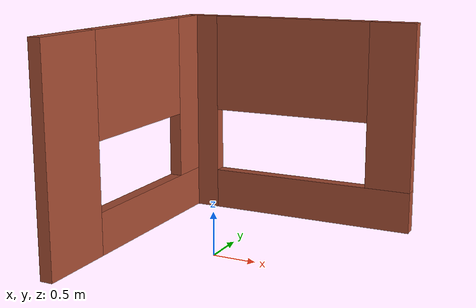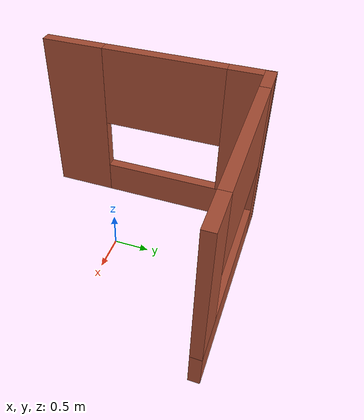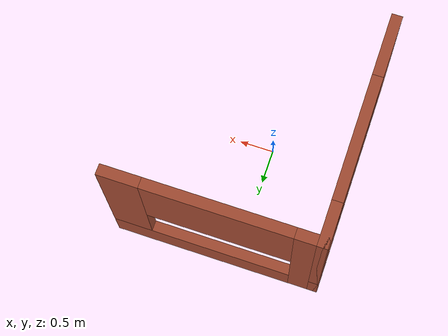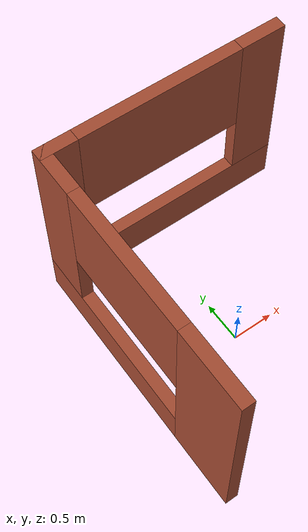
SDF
<?xml version="1.0" ?>

<sdf version="1.5">
<model name='building'>
      <pose frame=''>0.25 0.18 0 0 -0 0</pose>
      <link name='Wall_1'>
        <pose frame=''>-1.42 -0 0 0 -0 1.5708</pose>
        <visual name='Wall_1_Visual_0'>
          <pose frame=''>-1.1775 0 1.25 0 -0 0</pose>
          <geometry>
            <box>
              <size>0.895 0.15 2.5</size>
            </box>
          </geometry>
          <material>
            <script>
              <uri>file://media/materials/scripts/gazebo.material</uri>
              <name>Gazebo/Bricks</name>
            </script>
            <ambient>1 1 1 1</ambient>
          </material>
          <meta>
            <layer>0</layer>
          </meta>
        </visual>
        <collision name='Wall_1_Collision_0'>
          <geometry>
            <box>
              <size>0.895 0.15 2.5</size>
            </box>
          </geometry>
          <pose frame=''>-1.1775 0 1.25 0 -0 0</pose>
          <max_contacts>10</max_contacts>
          <surface>
            <contact>
              <ode/>
            </contact>
            <bounce/>
            <friction>
              <torsional>
                <ode/>
              </torsional>
              <ode/>
            </friction>
          </surface>
        </collision>
        <visual name='Wall_1_Visual_1'>
          <pose frame=''>0.4475 0 0.25 0 -0 0</pose>
          <geometry>
            <box>
              <size>2.355 0.15 0.5</size>
            </box>
          </geometry>
          <material>
            <script>
              <uri>file://media/materials/scripts/gazebo.material</uri>
              <name>Gazebo/Bricks</name>
            </script>
            <ambient>1 1 1 1</ambient>
          </material>
          <meta>
            <layer>0</layer>
          </meta>
        </visual>
        <collision name='Wall_1_Collision_1'>
          <geometry>
            <box>
              <size>2.355 0.15 0.5</size>
            </box>
          </geometry>
          <pose frame=''>0.4475 0 0.25 0 -0 0</pose>
          <max_contacts>10</max_contacts>
          <surface>
            <contact>
              <ode/>
            </contact>
            <bounce/>
            <friction>
              <torsional>
                <ode/>
              </torsional>
              <ode/>
            </friction>
          </surface>
        </collision>
        <visual name='Wall_1_Visual_2'>
          <pose frame=''>1.3175 0 1.5 0 -0 0</pose>
          <geometry>
            <box>
              <size>0.615 0.15 2</size>
            </box>
          </geometry>
          <material>
            <script>
              <uri>file://media/materials/scripts/gazebo.material</uri>
              <name>Gazebo/Bricks</name>
            </script>
            <ambient>1 1 1 1</ambient>
          </material>
          <meta>
            <layer>0</layer>
          </meta>
        </visual>
        <collision name='Wall_1_Collision_2'>
          <geometry>
            <box>
              <size>0.615 0.15 2</size>
            </box>
          </geometry>
          <pose frame=''>1.3175 0 1.5 0 -0 0</pose>
          <max_contacts>10</max_contacts>
          <surface>
            <contact>
              <ode/>
            </contact>
            <bounce/>
            <friction>
              <torsional>
                <ode/>
              </torsional>
              <ode/>
            </friction>
          </surface>
        </collision>
        <visual name='Wall_1_Visual_3'>
          <pose frame=''>0.14 0 1.9 0 -0 0</pose>
          <geometry>
            <box>
              <size>1.74 0.15 1.2</size>
            </box>
          </geometry>
          <material>
            <script>
              <uri>file://media/materials/scripts/gazebo.material</uri>
              <name>Gazebo/Bricks</name>
            </script>
            <ambient>1 1 1 1</ambient>
          </material>
          <meta>
            <layer>0</layer>
          </meta>
        </visual>
        <collision name='Wall_1_Collision_3'>
          <geometry>
            <box>
              <size>1.74 0.15 1.2</size>
            </box>
          </geometry>
          <pose frame=''>0.14 0 1.9 0 -0 0</pose>
          <max_contacts>10</max_contacts>
          <surface>
            <contact>
              <ode/>
            </contact>
            <bounce/>
            <friction>
              <torsional>
                <ode/>
              </torsional>
              <ode/>
            </friction>
          </surface>
        </collision>
        <self_collide>0</self_collide>
        <kinematic>0</kinematic>
      </link>
      <link name='Wall_3'>
        <pose frame=''>0.005 1.55 0 0 -0 0</pose>
        <visual name='Wall_3_Visual_0'>
          <pose frame=''>-1.27727 0 1.25 0 -0 0</pose>
          <geometry>
            <box>
              <size>0.425456 0.15 2.5</size>
            </box>
          </geometry>
          <material>
            <script>
              <uri>file://media/materials/scripts/gazebo.material</uri>
              <name>Gazebo/Bricks</name>
            </script>
            <ambient>1 1 1 1</ambient>
          </material>
          <meta>
            <layer>0</layer>
          </meta>
        </visual>
        <collision name='Wall_3_Collision_0'>
          <geometry>
            <box>
              <size>0.425456 0.15 2.5</size>
            </box>
          </geometry>
          <pose frame=''>-1.27727 0 1.25 0 -0 0</pose>
          <max_contacts>10</max_contacts>
          <surface>
            <contact>
              <ode/>
            </contact>
            <bounce/>
            <friction>
              <torsional>
                <ode/>
              </torsional>
              <ode/>
            </friction>
          </surface>
        </collision>
        <visual name='Wall_3_Visual_1'>
          <pose frame=''>0.212728 0 0.25 0 -0 0</pose>
          <geometry>
            <box>
              <size>2.55454 0.15 0.5</size>
            </box>
          </geometry>
          <material>
            <script>
              <uri>file://media/materials/scripts/gazebo.material</uri>
              <name>Gazebo/Bricks</name>
            </script>
            <ambient>1 1 1 1</ambient>
          </material>
          <meta>
            <layer>0</layer>
          </meta>
        </visual>
        <collision name='Wall_3_Collision_1'>
          <geometry>
            <box>
              <size>2.55454 0.15 0.5</size>
            </box>
          </geometry>
          <pose frame=''>0.212728 0 0.25 0 -0 0</pose>
          <max_contacts>10</max_contacts>
          <surface>
            <contact>
              <ode/>
            </contact>
            <bounce/>
            <friction>
              <torsional>
                <ode/>
              </torsional>
              <ode/>
            </friction>
          </surface>
        </collision>
        <visual name='Wall_3_Visual_2'>
          <pose frame=''>1.21273 0 1.5 0 -0 0</pose>
          <geometry>
            <box>
              <size>0.554544 0.15 2</size>
            </box>
          </geometry>
          <material>
            <script>
              <uri>file://media/materials/scripts/gazebo.material</uri>
              <name>Gazebo/Bricks</name>
            </script>
            <ambient>1 1 1 1</ambient>
          </material>
          <meta>
            <layer>0</layer>
          </meta>
        </visual>
        <collision name='Wall_3_Collision_2'>
          <geometry>
            <box>
              <size>0.554544 0.15 2</size>
            </box>
          </geometry>
          <pose frame=''>1.21273 0 1.5 0 -0 0</pose>
          <max_contacts>10</max_contacts>
          <surface>
            <contact>
              <ode/>
            </contact>
            <bounce/>
            <friction>
              <torsional>
                <ode/>
              </torsional>
              <ode/>
            </friction>
          </surface>
        </collision>
        <visual name='Wall_3_Visual_3'>
          <pose frame=''>-0.064544 0 1.9 0 -0 0</pose>
          <geometry>
            <box>
              <size>2 0.15 1.2</size>
            </box>
          </geometry>
          <material>
            <script>
              <uri>file://media/materials/scripts/gazebo.material</uri>
              <name>Gazebo/Bricks</name>
            </script>
            <ambient>1 1 1 1</ambient>
          </material>
          <meta>
            <layer>0</layer>
          </meta>
        </visual>
        <collision name='Wall_3_Collision_3'>
          <geometry>
            <box>
              <size>2 0.15 1.2</size>
            </box>
          </geometry>
          <pose frame=''>-0.064544 0 1.9 0 -0 0</pose>
          <max_contacts>10</max_contacts>
          <surface>
            <contact>
              <ode/>
            </contact>
            <bounce/>
            <friction>
              <torsional>
                <ode/>
              </torsional>
              <ode/>
            </friction>
          </surface>
        </collision>
        <self_collide>0</self_collide>
        <kinematic>0</kinematic>
      </link>
      <static>1</static>
    </model>
</sdf>
